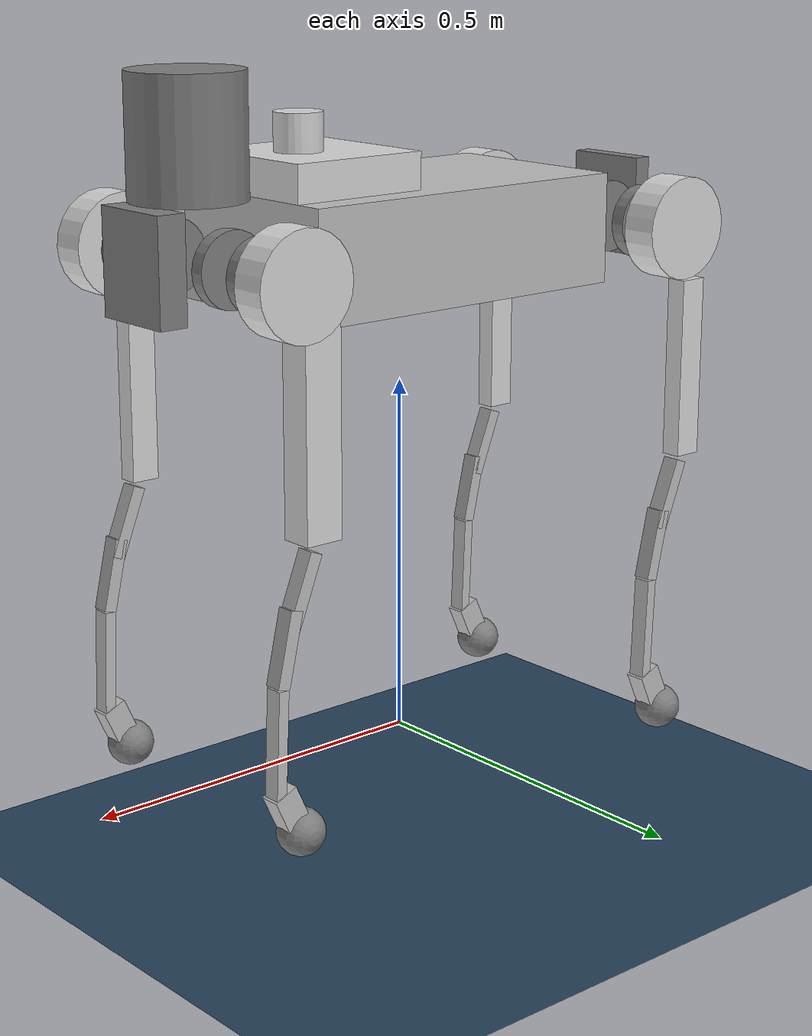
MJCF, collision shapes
<mujoco model="b2z1">
  <compiler autolimits="true" angle="radian" meshdir="../meshes/"/>

  <asset>
    <texture name="grid" type="2d" builtin="checker" rgb1=".1 .2 .3" rgb2=".2 .3 .4" width="300" height="300"/>
    <material name="grid" texture="grid" texrepeat="1 1" texuniform="true" reflectance=".2"/>

    <mesh name="base_link" file="base_link.stl"/>
    <mesh name="FL_hip" file="FL_hip.stl"/>
    <mesh name="FL_thigh" file="FL_thigh.stl"/>
    <mesh name="FL_calf" file="FL_calf.stl"/>
    <mesh name="FR_hip" file="FR_hip.stl"/>
    <mesh name="FR_thigh" file="FR_thigh.stl"/>
    <mesh name="FR_calf" file="FR_calf.stl"/>
    <mesh name="RL_hip" file="RL_hip.stl"/>
    <mesh name="RL_thigh" file="RL_thigh.stl"/>
    <mesh name="RL_calf" file="RL_calf.stl"/>
    <mesh name="RR_hip" file="RR_hip.stl"/>
    <mesh name="RR_thigh" file="RR_thigh.stl"/>
    <mesh name="RR_calf" file="RR_calf.stl"/>
    <mesh name="z1_Link00" file="z1_Link00.stl"/>
    <mesh name="z1_Link01" file="z1_Link01.stl"/>
    <mesh name="z1_Link02" file="z1_Link02.stl"/>
    <mesh name="z1_Link03" file="z1_Link03.stl"/>
    <mesh name="z1_Link04" file="z1_Link04.stl"/>
    <mesh name="z1_Link05" file="z1_Link05.stl"/>
    <mesh name="z1_Link06" file="z1_Link06.stl"/>
  </asset>

  <worldbody>
    <!-- 添加地面 -->
    <geom name="ground" type="plane" size="10 10 0.1" pos="0 0 -0.1" material="grid" friction="1.2 0.3 0.1"/>

    <!-- 调整机器人整体高度，使其站立在地面上 -->
    <body name="base_link" pos="0 0 0.7">
      <freejoint/>
      <!-- 原有的机器人几何体全部移入这个body中 -->
      <geom type="mesh" contype="0" conaffinity="0" group="1" density="0" rgba="0.74876 0.74876 0.74876 1" mesh="base_link"/>
      <geom size="0.25 0.14 0.075" type="box" rgba="0.74876 0.74876 0.74876 1"/>
      <geom size="0.076 0.08" pos="0.34218 0 0.15851" type="cylinder"/>
      <geom size="0.02 0.06 0.07" pos="0.41 0 0.005" type="box"/>
      <geom size="0.0125 0.06 0.07" pos="-0.405 0 0.005" type="box"/>
      <geom size="0.05 0.01" pos="0.20205 0.072 0" quat="0.707107 0 0.707107 0" type="cylinder"/>
      <geom size="0.05 0.01" pos="0.20205 -0.072 0" quat="0.707107 0 0.707107 0" type="cylinder"/>
      <geom size="0.05 0.01" pos="-0.20205 0.072 0" quat="0.707107 0 0.707107 0" type="cylinder"/>
      <geom size="0.05 0.01" pos="-0.20205 -0.072 0" quat="0.707107 0 0.707107 0" type="cylinder"/>
      <geom size="0.1 0.1 0.025" pos="0.15 0 0.1" type="box" contype="0" conaffinity="0" group="1" density="0" rgba="0.85 0.85 0.85 1"/>
      <geom size="0.1 0.1 0.025" pos="0.15 0 0.1" type="box" rgba="0.85 0.85 0.85 1"/>
      <geom pos="0.17 0 0.125" quat="1 0 0 0" type="mesh" contype="0" conaffinity="0" group="1" density="0" rgba="0.85 0.85 0.85 1" mesh="z1_Link00"/>
      <geom size="0.0325 0.0255" pos="0.17 0 0.1505" type="cylinder" rgba="0.85 0.85 0.85 1"/>
      <body name="FL_hip" pos="0.3285 0.072 0">
        <inertial pos="-0.00274412 -0.00822657 0" quat="0.507287 0.506932 0.492619 0.492957" mass="2.9464" diaginertia="0.00505471 0.00402681 0.00348237"/>
        <joint name="FL_hip_joint" pos="0 0 0" axis="1 0 0" range="-0.87 0.87" actuatorfrcrange="-200 200"/>
        <geom type="mesh" contype="0" conaffinity="0" group="1" density="0" rgba="0.85 0.85 0.85 1" mesh="FL_hip"/>
        <geom size="0.07 0.025" pos="0 0.12 0" quat="0.707107 0.707107 0 0" type="cylinder" rgba="0.85 0.85 0.85 1"/>
        <geom size="0.05 0.01" pos="0 -0.00798 0" quat="0.707107 0.707107 0 0" type="cylinder"/>
        <body name="FL_thigh" pos="0 0.11973 0">
          <inertial pos="-0.00263175 -0.0302271 -0.0545473" quat="0.55531 0.074085 -0.0356501 0.827569" mass="4.8094" diaginertia="0.0647238 0.0638299 0.00827354"/>
          <joint name="FL_thigh_joint" pos="0 0 0" axis="0 1 0" range="-0.94 4.69" actuatorfrcrange="-200 200"/>
          <geom type="mesh" contype="0" conaffinity="0" group="1" density="0" rgba="0.85 0.85 0.85 1" mesh="FL_thigh"/>
          <geom size="0.16 0.02225 0.027" pos="-0.025 0 -0.16" quat="0.707388 0 0.706825 0" type="box" rgba="0.85 0.85 0.85 1"/>
          <geom size="0.05 0.01" pos="0 -0.05788 0" quat="0.707107 0.707107 0 0" type="cylinder"/>
          <body name="FL_calf" pos="0 -8.6984e-05 -0.35">
            <inertial pos="-0.0559618 0 -0.044372" quat="0.687062 -0.16717 -0.16717 0.687062" mass="0.53" diaginertia="0.0305664 0.0276967 0.00313573"/>
            <joint name="FL_calf_joint" pos="0 0 0" axis="0 1 0" range="-2.82 -0.43" actuatorfrcrange="-320 320"/>
            <geom type="mesh" contype="0" conaffinity="0" group="1" density="0" rgba="0.74876 0.74876 0.74876 1" mesh="FL_calf"/>
            <geom size="0.05 0.01225 0.009" pos="-0.002 0 -0.03" quat="0.825336 0 0.564642 0" type="box" rgba="0.74876 0.74876 0.74876 1"/>
            <geom size="0.05 0.01225 0.009" pos="0.022 0 -0.1" quat="0.780707 0 0.624897 0" type="box" rgba="0.74876 0.74876 0.74876 1"/>
            <geom size="0.075 0.01225 0.0075" pos="0.036 0 -0.225" quat="0.721382 0 0.692537 0" type="box" rgba="0.74876 0.74876 0.74876 1"/>
            <geom size="0.025 0.014 0.0175" pos="0.023 0 -0.31" quat="0.540302 0 0.841471 0" type="box" rgba="0.74876 0.74876 0.74876 1"/>
            <geom name="FL_foot" size="0.032" pos="0 0 -0.35" quat="0.707388 0.706825 0 0" contype="1" conaffinity="1" friction="1.6 0.4 0.1"/>
          </body>
        </body>
      </body>
      <body name="FR_hip" pos="0.3285 -0.072 0">
        <inertial pos="-0.00918205 0.00927893 0.000239503" quat="0.476089 0.476234 0.519517 0.525967" mass="2.9464" diaginertia="0.00483542 0.00371023 0.00279582"/>
        <joint name="FR_hip_joint" pos="0 0 0" axis="1 0 0" range="-0.87 0.87" actuatorfrcrange="-200 200"/>
        <geom type="mesh" contype="0" conaffinity="0" group="1" density="0" rgba="0.85 0.85 0.85 1" mesh="FR_hip"/>
        <geom size="0.07 0.025" pos="0 -0.12 0" quat="0.707107 0.707107 0 0" type="cylinder" rgba="0.85 0.85 0.85 1"/>
        <geom size="0.05 0.01" pos="0 0.00798 0" quat="0.707107 0.707107 0 0" type="cylinder"/>
        <body name="FR_thigh" pos="0 -0.11973 0">
          <inertial pos="-0.00921236 0.0302271 -0.0545473" quat="0.444592 -0.00741797 0.0763473 0.892443" mass="4.8094" diaginertia="0.0648942 0.0630672 0.00811652"/>
          <joint name="FR_thigh_joint" pos="0 0 0" axis="0 1 0" range="-0.94 4.69" actuatorfrcrange="-200 200"/>
          <geom type="mesh" contype="0" conaffinity="0" group="1" density="0" rgba="0.85 0.85 0.85 1" mesh="FR_thigh"/>
          <geom size="0.125 0.014 0.02" pos="-0.03 0 -0.2" quat="0.707388 0 0.706825 0" type="box" rgba="0.85 0.85 0.85 1"/>
          <geom size="0.05 0.01" pos="0 0.05788 0" quat="0.707107 0.707107 0 0" type="cylinder"/>
          <body name="FR_calf" pos="0 8.6986e-05 -0.35">
            <inertial pos="-0.0559618 0 -0.044372" quat="0.687062 -0.16717 -0.16717 0.687062" mass="0.53" diaginertia="0.0305664 0.0276967 0.00313573"/>
            <joint name="FR_calf_joint" pos="0 0 0" axis="0 1 0" range="-2.82 -0.43" actuatorfrcrange="-320 320"/>
            <geom type="mesh" contype="0" conaffinity="0" group="1" density="0" rgba="0.74876 0.74876 0.74876 1" mesh="FR_calf"/>
            <geom size="0.05 0.01225 0.009" pos="-0.002 0 -0.03" quat="0.825336 0 0.564642 0" type="box" rgba="0.74876 0.74876 0.74876 1"/>
            <geom size="0.05 0.01225 0.009" pos="0.022 0 -0.1" quat="0.780707 0 0.624897 0" type="box" rgba="0.74876 0.74876 0.74876 1"/>
            <geom size="0.075 0.01225 0.0075" pos="0.036 0 -0.225" quat="0.721382 0 0.692537 0" type="box" rgba="0.74876 0.74876 0.74876 1"/>
            <geom size="0.025 0.014 0.0175" pos="0.023 0 -0.31" quat="0.540302 0 0.841471 0" type="box" rgba="0.74876 0.74876 0.74876 1"/>
            <geom name="FR_foot" size="0.032" pos="0 0 -0.35" quat="0.707388 0.706825 0 0" contype="1" conaffinity="1" friction="1.6 0.4 0.1"/>
          </body>
        </body>
      </body>
      <body name="RL_hip" pos="-0.3285 0.072 0">
        <inertial pos="0.00918205 -0.00927893 0.000239503" quat="0.476234 0.476089 0.525967 0.519517" mass="2.9464" diaginertia="0.00483542 0.00371023 0.00279582"/>
        <joint name="RL_hip_joint" pos="0 0 0" axis="1 0 0" range="-0.87 0.87" actuatorfrcrange="-200 200"/>
        <geom type="mesh" contype="0" conaffinity="0" group="1" density="0" rgba="0.85 0.85 0.85 1" mesh="RL_hip"/>
        <geom size="0.07 0.025" pos="0 0.12 0" quat="0.707107 0.707107 0 0" type="cylinder" rgba="0.85 0.85 0.85 1"/>
        <geom size="0.05 0.01" pos="0 -0.00798 0" quat="0.707107 0.707107 0 0" type="cylinder"/>
        <body name="RL_thigh" pos="0 0.11973 0">
          <inertial pos="-0.00263175 -0.0302271 -0.0545473" quat="0.555342 0.0740859 -0.035647 0.827548" mass="4.8094" diaginertia="0.0647241 0.06383 0.00827361"/>
          <joint name="RL_thigh_joint" pos="0 0 0" axis="0 1 0" range="-0.94 4.69" actuatorfrcrange="-200 200"/>
          <geom type="mesh" contype="0" conaffinity="0" group="1" density="0" rgba="0.85 0.85 0.85 1" mesh="RL_thigh"/>
          <geom size="0.125 0.014 0.02" pos="-0.03 0 -0.2" quat="0.707388 0 0.706825 0" type="box" rgba="0.85 0.85 0.85 1"/>
          <geom size="0.05 0.01" pos="0 -0.05788 0" quat="0.707107 0.707107 0 0" type="cylinder"/>
          <body name="RL_calf" pos="0 -8.6984e-05 -0.35">
            <inertial pos="-0.0559618 0 -0.044372" quat="0.687062 -0.16717 -0.16717 0.687062" mass="0.53" diaginertia="0.0305664 0.0276967 0.00313573"/>
            <joint name="RL_calf_joint" pos="0 0 0" axis="0 1 0" range="-2.82 -0.43" actuatorfrcrange="-320 320"/>
            <geom type="mesh" contype="0" conaffinity="0" group="1" density="0" rgba="0.74876 0.74876 0.74876 1" mesh="RL_calf"/>
            <geom size="0.05 0.01225 0.009" pos="-0.002 0 -0.03" quat="0.825336 0 0.564642 0" type="box" rgba="0.74876 0.74876 0.74876 1"/>
            <geom size="0.05 0.01225 0.009" pos="0.022 0 -0.1" quat="0.780707 0 0.624897 0" type="box" rgba="0.74876 0.74876 0.74876 1"/>
            <geom size="0.075 0.01225 0.0075" pos="0.036 0 -0.225" quat="0.721382 0 0.692537 0" type="box" rgba="0.74876 0.74876 0.74876 1"/>
            <geom size="0.025 0.014 0.0175" pos="0.023 0 -0.31" quat="0.540302 0 0.841471 0" type="box" rgba="0.74876 0.74876 0.74876 1"/>
            <geom name="RL_foot" size="0.032" pos="0 0 -0.35" quat="0.707388 0.706825 0 0" contype="1" conaffinity="1" friction="1.6 0.4 0.1"/>
          </body>
        </body>
      </body>
      <body name="RR_hip" pos="-0.3285 -0.072 0">
        <inertial pos="0.00274412 0.00822657 0" quat="0.506932 0.507287 0.492957 0.492619" mass="2.9464" diaginertia="0.00505471 0.00402681 0.00348237"/>
        <joint name="RR_hip_joint" pos="0 0 0" axis="1 0 0" range="-0.87 0.87" actuatorfrcrange="-200 200"/>
        <geom type="mesh" contype="0" conaffinity="0" group="1" density="0" rgba="0.85 0.85 0.85 1" mesh="RR_hip"/>
        <geom size="0.07 0.025" pos="0 -0.12 0" quat="0.707107 0.707107 0 0" type="cylinder" rgba="0.85 0.85 0.85 1"/>
        <geom size="0.05 0.01" pos="0 0.00798 0" quat="0.707107 0.707107 0 0" type="cylinder"/>
        <body name="RR_thigh" pos="0 -0.11973 0">
          <inertial pos="-0.00921236 0.0302271 -0.0545473" quat="0.444571 -0.00741611 0.0763481 0.892453" mass="4.8094" diaginertia="0.064894 0.0630671 0.00811646"/>
          <joint name="RR_thigh_joint" pos="0 0 0" axis="0 1 0" range="-0.94 4.69" actuatorfrcrange="-200 200"/>
          <geom type="mesh" contype="0" conaffinity="0" group="1" density="0" rgba="0.85 0.85 0.85 1" mesh="RR_thigh"/>
          <geom size="0.125 0.014 0.02" pos="-0.03 0 -0.2" quat="0.707388 0 0.706825 0" type="box" rgba="0.85 0.85 0.85 1"/>
          <geom size="0.05 0.01" pos="0 0.05788 0" quat="0.707107 0.707107 0 0" type="cylinder"/>
          <body name="RR_calf" pos="0 8.6986e-05 -0.35">
            <inertial pos="-0.0559618 2.06792e-05 -0.044372" quat="0.687173 -0.167191 -0.167148 0.686951" mass="0.53" diaginertia="0.0305664 0.0276967 0.00313573"/>
            <joint name="RR_calf_joint" pos="0 0 0" axis="0 1 0" range="-2.82 -0.43" actuatorfrcrange="-320 320"/>
            <geom type="mesh" contype="0" conaffinity="0" group="1" density="0" rgba="0.74876 0.74876 0.74876 1" mesh="RR_calf"/>
            <geom size="0.05 0.01225 0.009" pos="-0.002 0 -0.03" quat="0.825336 0 0.564642 0" type="box" rgba="0.74876 0.74876 0.74876 1"/>
            <geom size="0.05 0.01225 0.009" pos="0.022 0 -0.1" quat="0.780707 0 0.624897 0" type="box" rgba="0.74876 0.74876 0.74876 1"/>
            <geom size="0.075 0.01225 0.0075" pos="0.036 0 -0.225" quat="0.721382 0 0.692537 0" type="box" rgba="0.74876 0.74876 0.74876 1"/>
            <geom size="0.025 0.014 0.0175" pos="0.023 0 -0.31" quat="0.540302 0 0.841471 0" type="box" rgba="0.74876 0.74876 0.74876 1"/>
            <geom name="RR_foot" size="0.032" pos="0 0 -0.35" quat="0.707388 0.706825 0 0" contype="1" conaffinity="1" friction="1.6 0.4 0.1"/>
          </body>
        </body>
      </body>
     </body>
  </worldbody>
  <actuator>
    <!-- 腿部驱动器 -->
    <motor joint="FL_hip_joint" gear="1"/>
    <motor joint="FL_thigh_joint" gear="1"/>
    <motor joint="FL_calf_joint" gear="1"/>

    <motor joint="FR_hip_joint" gear="1"/>
    <motor joint="FR_thigh_joint" gear="1"/>
    <motor joint="FR_calf_joint" gear="1"/>

    <motor joint="RL_hip_joint" gear="1"/>
    <motor joint="RL_thigh_joint" gear="1"/>
    <motor joint="RL_calf_joint" gear="1"/>

    <motor joint="RR_hip_joint" gear="1"/>
    <motor joint="RR_thigh_joint" gear="1"/>
    <motor joint="RR_calf_joint" gear="1"/>

  </actuator>
</mujoco>
